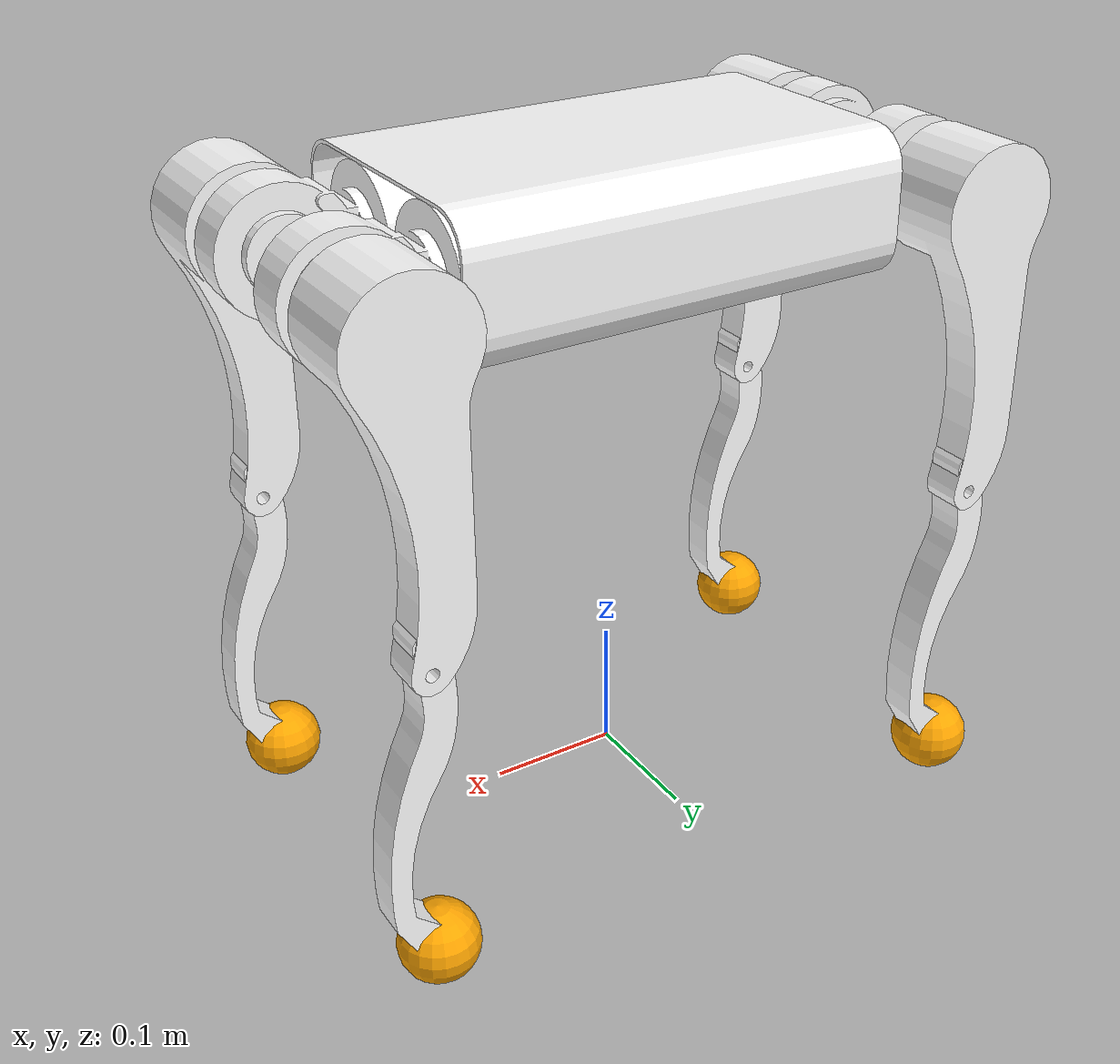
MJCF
<mujoco model="QXHZZ_description">

  <!-- 编译器设置，路径直接兼容你之前的URDF对应的网格目录 -->
  <compiler angle="radian" meshdir="../meshes/"/>
  <option gravity="0 0 -9.81"/>

  <!-- 默认属性，参考 Go2 的设定，给予电机转子惯量、阻尼及摩擦 -->
  <default>
    <joint damping="0.02" armature="0.01" frictionloss="0.01"/>

    <!-- 视觉组：不参与物理碰撞 -->
    <default class="visual">
        <geom type="mesh" contype="0" conaffinity="0" group="2"/>
    </default>

    <!-- 碰撞组：利用网格的凸包进行物理碰撞测试 -->
    <!-- 关键修复：加入 contype="1" conaffinity="0" 禁用机器人自碰撞，但保留与地面的碰撞 -->
    <default class="collision">
        <geom type="mesh" group="3" contype="1" conaffinity="0"/>
    </default>
  </default>

  <!-- 导入网格与材质 -->
  <asset>
    <material name="white" rgba="1 1 1 1" />
    <material name="gray" rgba="0.77647 0.75686 0.73725 1" />
    <material name="orange" rgba="1 0.65 0 1" />
    <material name="red" rgba="1 0 0 1" />

    <mesh file="base_link.STL" />
    <mesh file="shenzi.STL" />
    <mesh file="yq1.STL" />
    <mesh file="zh2.STL" />
    <mesh file="zh3.STL" />
    <mesh file="zq1.STL" />
    <mesh file="yh2.STL" />
    <mesh file="yh3.STL" />
    <mesh file="zh1.STL" />
    <mesh file="yh1.STL" />
  </asset>

  <worldbody>
    <!-- 地面与光照 -->
    <light pos="0 0 1.5" dir="0 0 -1" directional="true"/>

    <!-- 躯干，初始高度设为 0.45 避免陷入地面 -->
    <body name="trunk" pos="0 0 0.45">
      <freejoint name="root"/>
      <inertial pos="0 0 0" mass="5.36" fullinertia="0.055862 0.096172757 0.111591548 0 0 0" />

      <!-- IMU 虚拟连杆与质量 -->
      <body name="imu_link" pos="0 0 0">
          <inertial pos="0 0 0" mass="0.001" fullinertia="0.0001 0.0001 0.0001 0 0 0" />
          <geom type="box" size="0.0005 0.0005 0.0005" material="red" class="visual" />
      </body>

      <!-- Base 与 Trunk 身体网格 -->
      <geom mesh="base_link" material="gray" class="visual" />
      <geom mesh="base_link" class="collision" />
      <geom mesh="shenzi" material="white" class="visual" />
      <geom mesh="shenzi" class="collision" />

      <!-- ================= 前左腿 (FL) ================= -->
      <body name="FL_hip" pos="0.22599 0.05 0">
        <inertial pos="-0.040294 -0.0010631 6.4131E-06" mass="0.80054" fullinertia="0.000567387 0.000893106 0.000630935 0.000004141 0 0"/>
        <joint name="FL_hip_joint" pos="0 0 0" axis="1 0 0" range="-1.570796 1.570796" actuatorfrcrange="-48 48"/>
        <geom mesh="yq1" material="white" class="visual" />
        <geom mesh="yq1" class="collision" />

        <body name="FL_thigh" pos="0 0.088241 0">
          <inertial pos="0.0030535 -0.015391 -0.04077" mass="1.22" fullinertia="0.008707219 0.008424086 0.001382252 0 0.000487508 0"/>
          <joint name="FL_thigh_joint" pos="0 0 0" axis="0 1 0" range="-1.570796 3.141593" actuatorfrcrange="-48 48"/>
          <geom mesh="zh2" material="white" class="visual" />
          <geom mesh="zh2" class="collision" />

          <body name="FL_calf" pos="0 0 -0.22023">
            <inertial pos="-0.0088301 -1.0588E-06 -0.12441" mass="0.53021" fullinertia="0.004322324 0.004363782 0.000070443 -0.000000001 -0.000254221 -0.000000004"/>
            <joint name="FL_calf_joint" pos="0 0 0" axis="0 1 0" range="-2.705260 -0.523599" actuatorfrcrange="-48 48"/>
            <geom mesh="zh3" material="white" class="visual" />
            <geom mesh="zh3" class="collision" />

            <!-- 足端 Fixed Joint 省略，直接嵌入子实体 -->
            <body name="FL_foot" pos="0 0 -0.229">
              <inertial pos="0 0 0" mass="0.06" fullinertia="0.0000096 0.0000096 0.0000096 0 0 0"/>
              <geom type="sphere" size="0.03" material="orange" class="visual" />
              <!-- 脚尖我们默认赋予与地面碰撞能力 -->
              <geom type="sphere" size="0.03" condim="4" friction="3 0.2 0.2" solref="0.02 1"/>
            </body>
          </body>
        </body>
      </body>

      <!-- ================= 前右腿 (FR) ================= -->
      <body name="FR_hip" pos="0.22599 -0.05 0">
        <inertial pos="-0.040294 0.0010631 6.4131E-06" mass="0.80054" fullinertia="0.000567387 0.000893106 0.000630935 0.000004141 0 0"/>
        <joint name="FR_hip_joint" pos="0 0 0" axis="1 0 0" range="-1.570796 1.570796" actuatorfrcrange="-48 48"/>
        <geom mesh="zq1" material="white" class="visual" />
        <geom mesh="zq1" class="collision" />

        <body name="FR_thigh" pos="0 -0.088241 0">
          <inertial pos="0.0030535 0.015391 -0.04077" mass="1.22" fullinertia="0.008707219 0.008424086 0.001382252 0 0.000487508 0"/>
          <joint name="FR_thigh_joint" pos="0 0 0" axis="0 1 0" range="-1.570796 3.141593" actuatorfrcrange="-48 48"/>
          <geom mesh="yh2" material="white" class="visual" />
          <geom mesh="yh2" class="collision" />

          <body name="FR_calf" pos="0 0 -0.22023">
            <inertial pos="-0.0088301 1.0703E-06 -0.12441" mass="0.53021" fullinertia="0.004322324 0.004363782 0.000070443 -0.000000001 -0.000254221 -0.000000004"/>
            <joint name="FR_calf_joint" pos="0 0 0" axis="0 1 0" range="-2.705260 -0.523599" actuatorfrcrange="-48 48"/>
            <geom mesh="yh3" material="white" class="visual" />
            <geom mesh="yh3" class="collision" />

            <body name="FR_foot" pos="0 0 -0.229">
              <inertial pos="0 0 0" mass="0.06" fullinertia="0.0000096 0.0000096 0.0000096 0 0 0"/>
              <geom type="sphere" size="0.03" material="orange" class="visual" />
              <geom type="sphere" size="0.03" condim="4" friction="3 0.2 0.2" solref="0.02 1"/>
            </body>
          </body>
        </body>
      </body>

      <!-- ================= 后左腿 (RL) ================= -->
      <body name="RL_hip" pos="-0.22599 0.05 0">
        <inertial pos="0.040294 -0.0010631 6.4131E-06" mass="0.80054" fullinertia="0.000567387 0.000893106 0.000630935 0.000004141 0 0"/>
        <joint name="RL_hip_joint" pos="0 0 0" axis="1 0 0" range="-1.570796 1.570796" actuatorfrcrange="-48 48"/>
        <geom mesh="zh1" material="white" class="visual" />
        <geom mesh="zh1" class="collision" />

        <body name="RL_thigh" pos="0 0.088241 0">
          <inertial pos="-0.0030535 -0.015391 -0.04077" mass="1.22" fullinertia="0.008707219 0.008424086 0.001382252 0 0.000487508 0"/>
          <joint name="RL_thigh_joint" pos="0 0 0" axis="0 1 0" range="-1.570796 3.141593" actuatorfrcrange="-48 48"/>
          <geom mesh="zh2" material="white" class="visual" />
          <geom mesh="zh2" class="collision" />

          <body name="RL_calf" pos="0 0 -0.22023">
            <inertial pos="0.0088301 -1.0703E-06 -0.12441" mass="0.53021" fullinertia="0.004322324 0.004363782 0.000070443 -0.000000001 -0.000254221 -0.000000004"/>
            <joint name="RL_calf_joint" pos="0 0 0" axis="0 1 0" range="-2.705260 -0.523599" actuatorfrcrange="-48 48"/>
            <geom mesh="zh3" material="white" class="visual" />
            <geom mesh="zh3" class="collision" />

            <body name="RL_foot" pos="0 0 -0.229">
              <inertial pos="0 0 0" mass="0.06" fullinertia="0.0000096 0.0000096 0.0000096 0 0 0"/>
              <geom type="sphere" size="0.03" material="orange" class="visual" />
              <geom type="sphere" size="0.03" condim="4" friction="3 0.2 0.2" solref="0.02 1"/>
            </body>
          </body>
        </body>
      </body>

      <!-- ================= 后右腿 (RR) ================= -->
      <body name="RR_hip" pos="-0.22599 -0.05 0">
        <inertial pos="0.040294 0.0010631 6.4131E-06" mass="0.80054" fullinertia="0.000567387 0.000893106 0.000630935 0.000004141 0 0"/>
        <joint name="RR_hip_joint" pos="0 0 0" axis="1 0 0" range="-1.570796 1.570796" actuatorfrcrange="-48 48"/>
        <geom mesh="yh1" material="white" class="visual" />
        <geom mesh="yh1" class="collision" />

        <body name="RR_thigh" pos="0 -0.088241 0">
          <inertial pos="-0.0030535 0.015391 -0.04077" mass="1.22" fullinertia="0.008707219 0.008424086 0.001382252 0 0.000487508 0"/>
          <joint name="RR_thigh_joint" pos="0 0 0" axis="0 1 0" range="-1.570796 3.141593" actuatorfrcrange="-48 48"/>
          <geom mesh="yh2" material="white" class="visual" />
          <geom mesh="yh2" class="collision" />

          <body name="RR_calf" pos="0 0 -0.22023">
            <inertial pos="0.0088301 1.0588E-06 -0.12441" mass="0.53021" fullinertia="0.004322324 0.004363782 0.000070443 -0.000000001 -0.000254221 -0.000000004"/>
            <joint name="RR_calf_joint" pos="0 0 0" axis="0 1 0" range="-2.705260 -0.523599" actuatorfrcrange="-48 48"/>
            <geom mesh="yh3" material="white" class="visual" />
            <geom mesh="yh3" class="collision" />

            <body name="RR_foot" pos="0 0 -0.229">
              <inertial pos="0 0 0" mass="0.06" fullinertia="0.0000096 0.0000096 0.0000096 0 0 0"/>
              <geom type="sphere" size="0.03" material="orange" class="visual" />
              <geom type="sphere" size="0.03" condim="4" friction="3 0.2 0.2" solref="0.02 1"/>
            </body>
          </body>
        </body>
      </body>

    </body>
  </worldbody>

  <!-- 12个驱动电机定义 -->
  <actuator>
    <motor name="FL_hip"   joint="FL_hip_joint" ctrllimited="true" ctrlrange="-48 48"/>
    <motor name="FL_thigh" joint="FL_thigh_joint" ctrllimited="true" ctrlrange="-48 48"/>
    <motor name="FL_calf"  joint="FL_calf_joint" ctrllimited="true" ctrlrange="-48 48"/>
    <motor name="FR_hip"   joint="FR_hip_joint" ctrllimited="true" ctrlrange="-48 48"/>
    <motor name="FR_thigh" joint="FR_thigh_joint" ctrllimited="true" ctrlrange="-48 48"/>
    <motor name="FR_calf"  joint="FR_calf_joint" ctrllimited="true" ctrlrange="-48 48"/>
    <motor name="RL_hip"   joint="RL_hip_joint" ctrllimited="true" ctrlrange="-48 48"/>
    <motor name="RL_thigh" joint="RL_thigh_joint" ctrllimited="true" ctrlrange="-48 48"/>
    <motor name="RL_calf"  joint="RL_calf_joint" ctrllimited="true" ctrlrange="-48 48"/>
    <motor name="RR_hip"   joint="RR_hip_joint" ctrllimited="true" ctrlrange="-48 48"/>
    <motor name="RR_thigh" joint="RR_thigh_joint" ctrllimited="true" ctrlrange="-48 48"/>
    <motor name="RR_calf"  joint="RR_calf_joint" ctrllimited="true" ctrlrange="-48 48"/>
  </actuator>

  <!-- 关键修复：提供初始关键帧，使所有关节都处于合法的角度范围内，避免模拟瞬间爆炸 -->
  <keyframe>
    <!-- 坐标(3)+四元数(4)+四条腿(12个关节): 按照 FL, FR, RL, RR 顺序应用默认关节角 -->
    <key name="stand" qpos="0 0 0.45 1 0 0 0   0.1 0.8 -1.5   -0.1 0.8 -1.5   0.1 1.0 -1.5   -0.1 1.0 -1.5"/>
  </keyframe>

</mujoco>
